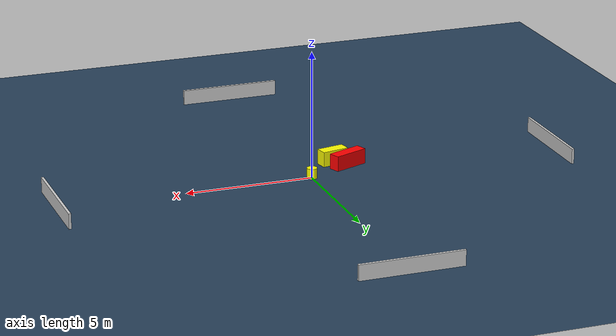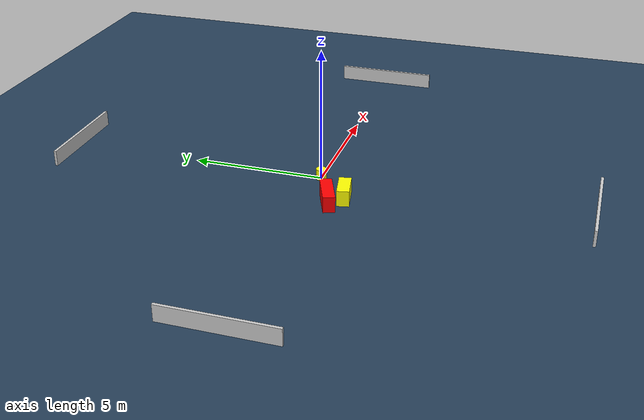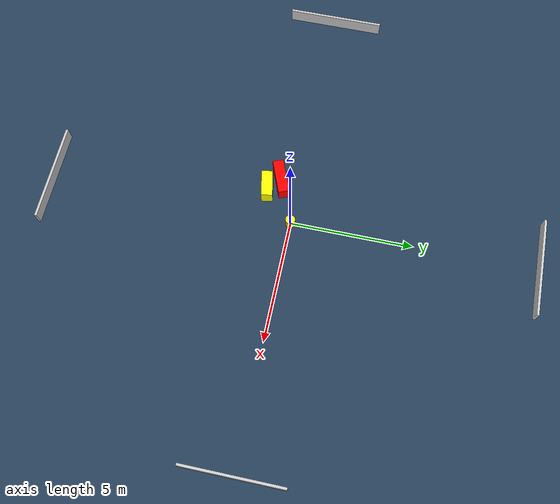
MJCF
<?xml version="1.0" ?>
<mujoco model="generated_environment">
  <option timestep="0.01" integrator="RK4" cone="elliptic"/>
  <default>
    <geom density="1"/>
  </default>
  <asset>
    <texture builtin="gradient" height="3072" name="skybox" rgb1="0.3 0.5 0.7" rgb2="0 0 0" type="skybox" width="512"/>
    <texture builtin="checker" height="300" name="groundplane" rgb1="0.2 0.3 0.4" rgb2="0.1 0.2 0.3" type="2d" width="300"/>
    <material name="groundplane" reflectance="0.2" texrepeat="5 5" texture="groundplane"/>
  </asset>
  <worldbody>
    <light dir="0 0 -1" directional="true" pos="0 0 1.5"/>
    <geom condim="3" friction="0.5 0.005 0.001" material="groundplane" name="floor" pos="0 0 0" size="0 0 0.05" type="plane"/>
    <body name="walls">
      <geom name="wall_1" condim="4" pos="-10.0 0.0 0.3" rgba="0.800000011920929 0.800000011920929 0.800000011920929 1.0" size="0.05 2.0 0.3" type="box"/>
      <geom name="wall_2" condim="4" pos="10.0 0.0 0.3" rgba="0.800000011920929 0.800000011920929 0.800000011920929 1.0" size="0.05 2.0 0.3" type="box"/>
      <geom name="wall_3" condim="4" pos="0.0 -10.0 0.3" rgba="0.800000011920929 0.800000011920929 0.800000011920929 1.0" size="2.0 0.05 0.3" type="box"/>
      <geom name="wall_4" condim="4" pos="0.0 10.0 0.3" rgba="0.800000011920929 0.800000011920929 0.800000011920929 1.0" size="2.0 0.05 0.3" type="box"/>
    </body>
    <body name="robot">
      <joint name="joint_x" type="slide" pos="0 0 0" axis="1 0 0"/>
      <joint name="joint_y" type="slide" pos="0 0 0" axis="0 1 0"/>
      <geom name="robot" type="cylinder" pos="0.0 0.0 0.2" size="0.2 0.2 0.0" mass="5.0" friction="1.0 0.005 0.0001" condim="4" rgba="1.0 1.0 0.0 1.0"/>
    </body>
    <body name="obstacle_1_movable">
      <geom name="obstacle_1_movable" condim="4" pos="-1.3106395580902968 -1.24883577134991 0.3" euler="0 0 101.18128958914177" friction="0.0 0.005 0.001" rgba="1.0 1.0 0.0 1.0" size="0.22852812810414602 0.5416349617407985 0.3" type="box" mass="0.1"/>
      <joint type="free"/>
    </body>
    <body name="obstacle_2_static">
      <geom name="obstacle_2_static" condim="4" pos="-1.7406946022841252 -0.7567005440606654 0.3" euler="0 0 21.9036881260565" friction="0.0 0.005 0.001" rgba="1.0 0.0 0.0 1.0" size="0.7133800103247669 0.2226150320718402 0.3" type="box"/>
    </body>
  </worldbody>
  <actuator>
    <motor name="actuator_x" joint="joint_x" gear="1" ctrlrange="-1 1"/>
    <motor name="actuator_y" joint="joint_y" gear="1" ctrlrange="-1 1"/>
  </actuator>
</mujoco>
